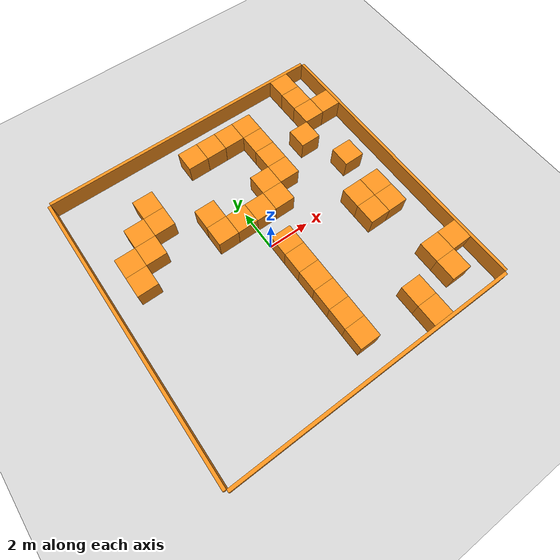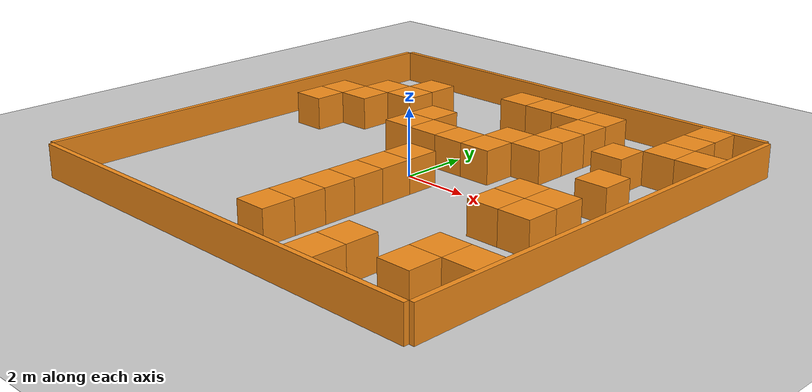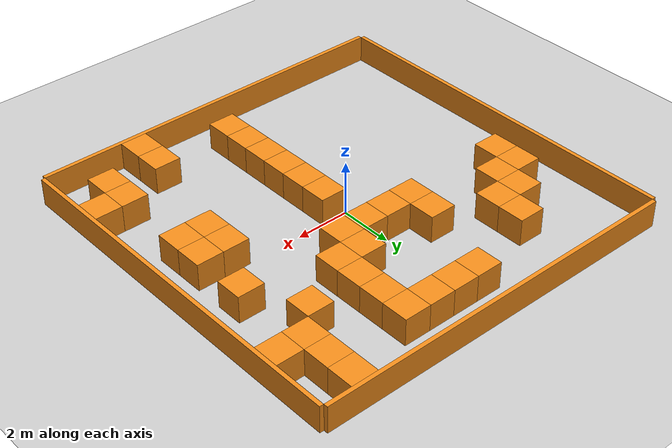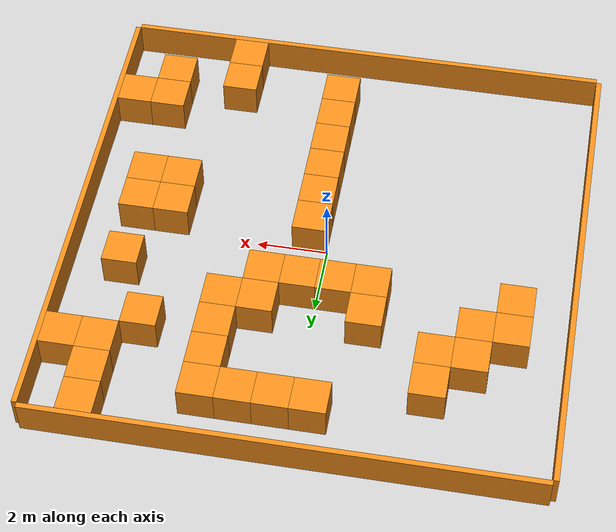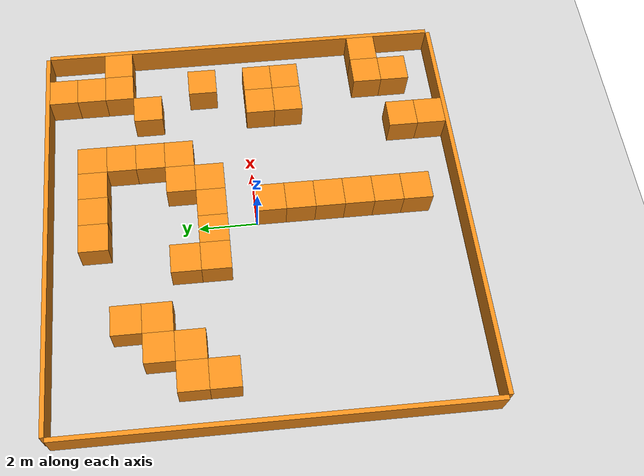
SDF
<sdf version='1.6'>
  <world name='default'>
    <scene>
      <shadows>0</shadows>
      <ambient>0.8 0.8 0.8 1</ambient>
      <background>1 1 1 1</background>
      <grid>1</grid>
      <origin_visual>1</origin_visual>
    </scene>
    <physics name='default_physics' default='0' type='ode'>
      <max_step_size>0.001</max_step_size>
      <real_time_factor>1</real_time_factor>
      <real_time_update_rate>500</real_time_update_rate>
    </physics>

     <model name='ground_plane'>
      <static>1</static>
      <link name='link'>
        <collision name='collision'>
          <geometry>
            <plane>
              <normal>0 0 1</normal>
              <size>50 50</size>
            </plane>
          </geometry>
          <surface>
            <friction>
              <ode>
                <mu>100</mu>
                <mu2>50</mu2>
              </ode>
              <torsional>
                <ode/>
              </torsional>
            </friction>
            <bounce/>
            <contact>
              <ode/>
            </contact>
          </surface>
          <max_contacts>10</max_contacts>
        </collision>
        <visual name='visual'>
          <cast_shadows>0</cast_shadows>
          <geometry>
            <plane>
              <normal>0 0 1</normal>
              <size>100 100</size>
            </plane>
          </geometry>
          <material>
            <script>
              <name>Gazebo/Grey</name>
              <uri>file://media/materials/scripts/gazebo.material</uri>
            </script>
          </material>
        </visual>
        <velocity_decay>
          <linear>0</linear>
          <angular>0</angular>
        </velocity_decay>
        <self_collide>0</self_collide>
        <kinematic>0</kinematic>
        <gravity>1</gravity>
        <enable_wind>0</enable_wind>
      </link>
    </model>

    <gui fullscreen='0'>
      <camera name='world_camera'>
        <pose frame=''>0.0 0.0 30.0 3.14159 1.57079 3.14159</pose>
        <view_controller>ortho</view_controller>
        <projection_type>orthographic</projection_type>
      </camera>
    </gui>

    <gravity>0 0 -9.8</gravity>
    <magnetic_field>6e-06 2.3e-05 -4.2e-05</magnetic_field>
    <atmosphere type='adiabatic'/>
    <audio>
      <device>default</device>
    </audio>
    <wind/>
    <spherical_coordinates>
      <surface_model>EARTH_WGS84</surface_model>
      <latitude_deg>0</latitude_deg>
      <longitude_deg>0</longitude_deg>
      <elevation>0</elevation>
      <heading_deg>0</heading_deg>
    </spherical_coordinates>

    <model name='unit_box'>
      <pose frame=''>5.5 6.5 0.5 0 -0 0</pose>
      <static>1</static>
      <link name='link'>
        <inertial>
          <mass>1</mass>
          <inertia>
            <ixx>0.166667</ixx>
            <ixy>0</ixy>
            <ixz>0</ixz>
            <iyy>0.166667</iyy>
            <iyz>0</iyz>
            <izz>0.166667</izz>
          </inertia>
        </inertial>
        <collision name='collision'>
          <geometry>
            <box>
              <size>0.999998 1 1</size>
            </box>
          </geometry>
          <max_contacts>10</max_contacts>
          <surface>
            <contact>
              <ode/>
            </contact>
            <bounce/>
            <friction>
              <torsional>
                <ode/>
              </torsional>
              <ode/>
            </friction>
          </surface>
        </collision>
        <visual name='visual'>
          <geometry>
            <box>
              <size>0.999998 1 1</size>
            </box>
          </geometry>
          <material>
            <script>
              <name>Gazebo/Orange</name>
              <uri>file://media/materials/scripts/gazebo.material</uri>
            </script>
          </material>
        </visual>
        <self_collide>0</self_collide>
        <enable_wind>0</enable_wind>
        <kinematic>0</kinematic>
      </link>
    </model>

    <model name='outer_barrier_1'>
      <pose frame=''>-7.075 0 0.5 0 -0 0</pose>
      <static>1</static>
      <link name='link'>
        <inertial>
          <mass>1</mass>
          <inertia>
            <ixx>0.166667</ixx>
            <ixy>0</ixy>
            <ixz>0</ixz>
            <iyy>0.166667</iyy>
            <iyz>0</iyz>
            <izz>0.166667</izz>
          </inertia>
        </inertial>
        <collision name='collision'>
          <geometry>
            <box>
              <size>0.15 14 1</size>
            </box>
          </geometry>
          <max_contacts>10</max_contacts>
          <surface>
            <contact>
              <ode/>
            </contact>
            <bounce/>
            <friction>
              <torsional>
                <ode/>
              </torsional>
              <ode/>
            </friction>
          </surface>
        </collision>
        <visual name='visual'>
          <geometry>
            <box>
              <size>0.15 14 1</size>
            </box>
          </geometry>
          <material>
            <script>
              <name>Gazebo/Orange</name>
              <uri>file://media/materials/scripts/gazebo.material</uri>
            </script>
          </material>
        </visual>
        <self_collide>0</self_collide>
        <enable_wind>0</enable_wind>
        <kinematic>0</kinematic>
      </link>
    </model>

    <model name='outer_barrier_2'>
      <pose frame=''>7.075 0 0.5 0 -0 0</pose>
      <static>1</static>
      <link name='link'>
        <inertial>
          <mass>1</mass>
          <inertia>
            <ixx>0.166667</ixx>
            <ixy>0</ixy>
            <ixz>0</ixz>
            <iyy>0.166667</iyy>
            <iyz>0</iyz>
            <izz>0.166667</izz>
          </inertia>
        </inertial>
        <collision name='collision'>
          <geometry>
            <box>
              <size>0.15 14 1</size>
            </box>
          </geometry>
          <max_contacts>10</max_contacts>
          <surface>
            <contact>
              <ode/>
            </contact>
            <bounce/>
            <friction>
              <torsional>
                <ode/>
              </torsional>
              <ode/>
            </friction>
          </surface>
        </collision>
        <visual name='visual'>
          <geometry>
            <box>
              <size>0.15 14 1</size>
            </box>
          </geometry>
          <material>
            <script>
              <name>Gazebo/Orange</name>
              <uri>file://media/materials/scripts/gazebo.material</uri>
            </script>
          </material>
        </visual>
        <self_collide>0</self_collide>
        <enable_wind>0</enable_wind>
        <kinematic>0</kinematic>
      </link>
    </model>

    <model name='outer_barrier_3'>
      <pose frame=''>0 7.075 0.5 0 -0 1.5708</pose>
      <static>1</static>
      <link name='link'>
        <inertial>
          <mass>1</mass>
          <inertia>
            <ixx>0.166667</ixx>
            <ixy>0</ixy>
            <ixz>0</ixz>
            <iyy>0.166667</iyy>
            <iyz>0</iyz>
            <izz>0.166667</izz>
          </inertia>
        </inertial>
        <collision name='collision'>
          <geometry>
            <box>
              <size>0.15 14 1</size>
            </box>
          </geometry>
          <max_contacts>10</max_contacts>
          <surface>
            <contact>
              <ode/>
            </contact>
            <bounce/>
            <friction>
              <torsional>
                <ode/>
              </torsional>
              <ode/>
            </friction>
          </surface>
        </collision>
        <visual name='visual'>
          <geometry>
            <box>
              <size>0.15 14 1</size>
            </box>
          </geometry>
          <material>
            <script>
              <name>Gazebo/Orange</name>
              <uri>file://media/materials/scripts/gazebo.material</uri>
            </script>
          </material>
        </visual>
        <self_collide>0</self_collide>
        <enable_wind>0</enable_wind>
        <kinematic>0</kinematic>
      </link>
    </model>

    <model name='outer_barrier_4'>
      <pose frame=''>0 -7.075 0.5 0 -0 1.5708</pose>
      <static>1</static>
      <link name='link'>
        <inertial>
          <mass>1</mass>
          <inertia>
            <ixx>0.166667</ixx>
            <ixy>0</ixy>
            <ixz>0</ixz>
            <iyy>0.166667</iyy>
            <iyz>0</iyz>
            <izz>0.166667</izz>
          </inertia>
        </inertial>
        <collision name='collision'>
          <geometry>
            <box>
              <size>0.15 14 1</size>
            </box>
          </geometry>
          <max_contacts>10</max_contacts>
          <surface>
            <contact>
              <ode/>
            </contact>
            <bounce/>
            <friction>
              <torsional>
                <ode/>
              </torsional>
              <ode/>
            </friction>
          </surface>
        </collision>
        <visual name='visual'>
          <geometry>
            <box>
              <size>0.15 14 1</size>
            </box>
          </geometry>
          <material>
            <script>
              <name>Gazebo/Orange</name>
              <uri>file://media/materials/scripts/gazebo.material</uri>
            </script>
          </material>
        </visual>
        <self_collide>0</self_collide>
        <enable_wind>0</enable_wind>
        <kinematic>0</kinematic>
      </link>
    </model>

    <model name='box_01'>
      <pose frame=''>5.5 5.5 0.5 0 -0 0</pose>
      <static>1</static>
      <link name='link'>
        <inertial>
          <mass>1</mass>
          <inertia>
            <ixx>0.166667</ixx>
            <ixy>0</ixy>
            <ixz>0</ixz>
            <iyy>0.166667</iyy>
            <iyz>0</iyz>
            <izz>0.166667</izz>
          </inertia>
        </inertial>
        <collision name='collision'>
          <geometry>
            <box>
              <size>0.999998 1 1</size>
            </box>
          </geometry>
          <max_contacts>10</max_contacts>
          <surface>
            <contact>
              <ode/>
            </contact>
            <bounce/>
            <friction>
              <torsional>
                <ode/>
              </torsional>
              <ode/>
            </friction>
          </surface>
        </collision>
        <visual name='visual'>
          <geometry>
            <box>
              <size>0.999998 1 1</size>
            </box>
          </geometry>
          <material>
            <script>
              <name>Gazebo/Orange</name>
              <uri>file://media/materials/scripts/gazebo.material</uri>
            </script>
          </material>
        </visual>
        <self_collide>0</self_collide>
        <enable_wind>0</enable_wind>
        <kinematic>0</kinematic>
      </link>
    </model>

    <model name='box_02'>
      <pose frame=''>4.5 3.5 0.5 0 -0 0</pose>
      <static>1</static>
      <link name='link'>
        <inertial>
          <mass>1</mass>
          <inertia>
            <ixx>0.166667</ixx>
            <ixy>0</ixy>
            <ixz>0</ixz>
            <iyy>0.166667</iyy>
            <iyz>0</iyz>
            <izz>0.166667</izz>
          </inertia>
        </inertial>
        <collision name='collision'>
          <geometry>
            <box>
              <size>0.999998 1 1</size>
            </box>
          </geometry>
          <max_contacts>10</max_contacts>
          <surface>
            <contact>
              <ode/>
            </contact>
            <bounce/>
            <friction>
              <torsional>
                <ode/>
              </torsional>
              <ode/>
            </friction>
          </surface>
        </collision>
        <visual name='visual'>
          <geometry>
            <box>
              <size>0.999998 1 1</size>
            </box>
          </geometry>
          <material>
            <script>
              <name>Gazebo/Orange</name>
              <uri>file://media/materials/scripts/gazebo.material</uri>
            </script>
          </material>
        </visual>
        <self_collide>0</self_collide>
        <enable_wind>0</enable_wind>
        <kinematic>0</kinematic>
      </link>
    </model>

    <model name='box_03'>
      <pose frame=''>0.5 -0.5 0.5 0 -0 0</pose>
      <static>1</static>
      <link name='link'>
        <inertial>
          <mass>1</mass>
          <inertia>
            <ixx>0.166667</ixx>
            <ixy>0</ixy>
            <ixz>0</ixz>
            <iyy>0.166667</iyy>
            <iyz>0</iyz>
            <izz>0.166667</izz>
          </inertia>
        </inertial>
        <collision name='collision'>
          <geometry>
            <box>
              <size>0.999998 1 1</size>
            </box>
          </geometry>
          <max_contacts>10</max_contacts>
          <surface>
            <contact>
              <ode/>
            </contact>
            <bounce/>
            <friction>
              <torsional>
                <ode/>
              </torsional>
              <ode/>
            </friction>
          </surface>
        </collision>
        <visual name='visual'>
          <geometry>
            <box>
              <size>0.999998 1 1</size>
            </box>
          </geometry>
          <material>
            <script>
              <name>Gazebo/Orange</name>
              <uri>file://media/materials/scripts/gazebo.material</uri>
            </script>
          </material>
        </visual>
        <self_collide>0</self_collide>
        <enable_wind>0</enable_wind>
        <kinematic>0</kinematic>
      </link>
    </model>

    <model name='box_04'>
      <pose frame=''>0.5 -1.5 0.5 0 -0 0</pose>
      <static>1</static>
      <link name='link'>
        <inertial>
          <mass>1</mass>
          <inertia>
            <ixx>0.166667</ixx>
            <ixy>0</ixy>
            <ixz>0</ixz>
            <iyy>0.166667</iyy>
            <iyz>0</iyz>
            <izz>0.166667</izz>
          </inertia>
        </inertial>
        <collision name='collision'>
          <geometry>
            <box>
              <size>0.999998 1 1</size>
            </box>
          </geometry>
          <max_contacts>10</max_contacts>
          <surface>
            <contact>
              <ode/>
            </contact>
            <bounce/>
            <friction>
              <torsional>
                <ode/>
              </torsional>
              <ode/>
            </friction>
          </surface>
        </collision>
        <visual name='visual'>
          <geometry>
            <box>
              <size>0.999998 1 1</size>
            </box>
          </geometry>
          <material>
            <script>
              <name>Gazebo/Orange</name>
              <uri>file://media/materials/scripts/gazebo.material</uri>
            </script>
          </material>
        </visual>
        <self_collide>0</self_collide>
        <enable_wind>0</enable_wind>
        <kinematic>0</kinematic>
      </link>
    </model>

    <model name='box_05'>
      <pose frame=''>0.5 -2.5 0.5 0 -0 0</pose>
      <static>1</static>
      <link name='link'>
        <inertial>
          <mass>1</mass>
          <inertia>
            <ixx>0.166667</ixx>
            <ixy>0</ixy>
            <ixz>0</ixz>
            <iyy>0.166667</iyy>
            <iyz>0</iyz>
            <izz>0.166667</izz>
          </inertia>
        </inertial>
        <collision name='collision'>
          <geometry>
            <box>
              <size>0.999998 1 1</size>
            </box>
          </geometry>
          <max_contacts>10</max_contacts>
          <surface>
            <contact>
              <ode/>
            </contact>
            <bounce/>
            <friction>
              <torsional>
                <ode/>
              </torsional>
              <ode/>
            </friction>
          </surface>
        </collision>
        <visual name='visual'>
          <geometry>
            <box>
              <size>0.999998 1 1</size>
            </box>
          </geometry>
          <material>
            <script>
              <name>Gazebo/Orange</name>
              <uri>file://media/materials/scripts/gazebo.material</uri>
            </script>
          </material>
        </visual>
        <self_collide>0</self_collide>
        <enable_wind>0</enable_wind>
        <kinematic>0</kinematic>
      </link>
    </model>

    <model name='box_06'>
      <pose frame=''>0.5 -5.5 0.5 0 -0 0</pose>
      <static>1</static>
      <link name='link'>
        <inertial>
          <mass>1</mass>
          <inertia>
            <ixx>0.166667</ixx>
            <ixy>0</ixy>
            <ixz>0</ixz>
            <iyy>0.166667</iyy>
            <iyz>0</iyz>
            <izz>0.166667</izz>
          </inertia>
        </inertial>
        <collision name='collision'>
          <geometry>
            <box>
              <size>0.999998 1 1</size>
            </box>
          </geometry>
          <max_contacts>10</max_contacts>
          <surface>
            <contact>
              <ode/>
            </contact>
            <bounce/>
            <friction>
              <torsional>
                <ode/>
              </torsional>
              <ode/>
            </friction>
          </surface>
        </collision>
        <visual name='visual'>
          <geometry>
            <box>
              <size>0.999998 1 1</size>
            </box>
          </geometry>
          <material>
            <script>
              <name>Gazebo/Orange</name>
              <uri>file://media/materials/scripts/gazebo.material</uri>
            </script>
          </material>
        </visual>
        <self_collide>0</self_collide>
        <enable_wind>0</enable_wind>
        <kinematic>0</kinematic>
      </link>
    </model>

    <model name='box_07'>
      <pose frame=''>0.5 -3.5 0.5 0 -0 0</pose>
      <static>1</static>
      <link name='link'>
        <inertial>
          <mass>1</mass>
          <inertia>
            <ixx>0.166667</ixx>
            <ixy>0</ixy>
            <ixz>0</ixz>
            <iyy>0.166667</iyy>
            <iyz>0</iyz>
            <izz>0.166667</izz>
          </inertia>
        </inertial>
        <collision name='collision'>
          <geometry>
            <box>
              <size>0.999998 1 1</size>
            </box>
          </geometry>
          <max_contacts>10</max_contacts>
          <surface>
            <contact>
              <ode/>
            </contact>
            <bounce/>
            <friction>
              <torsional>
                <ode/>
              </torsional>
              <ode/>
            </friction>
          </surface>
        </collision>
        <visual name='visual'>
          <geometry>
            <box>
              <size>0.999998 1 1</size>
            </box>
          </geometry>
          <material>
            <script>
              <name>Gazebo/Orange</name>
              <uri>file://media/materials/scripts/gazebo.material</uri>
            </script>
          </material>
        </visual>
        <self_collide>0</self_collide>
        <enable_wind>0</enable_wind>
        <kinematic>0</kinematic>
      </link>
    </model>

    <model name='box_08'>
      <pose frame=''>3.5 -5.5 0.5 0 -0 0</pose>
      <static>1</static>
      <link name='link'>
        <inertial>
          <mass>1</mass>
          <inertia>
            <ixx>0.166667</ixx>
            <ixy>0</ixy>
            <ixz>0</ixz>
            <iyy>0.166667</iyy>
            <iyz>0</iyz>
            <izz>0.166667</izz>
          </inertia>
        </inertial>
        <collision name='collision'>
          <geometry>
            <box>
              <size>0.999998 1 1</size>
            </box>
          </geometry>
          <max_contacts>10</max_contacts>
          <surface>
            <contact>
              <ode/>
            </contact>
            <bounce/>
            <friction>
              <torsional>
                <ode/>
              </torsional>
              <ode/>
            </friction>
          </surface>
        </collision>
        <visual name='visual'>
          <geometry>
            <box>
              <size>0.999998 1 1</size>
            </box>
          </geometry>
          <material>
            <script>
              <name>Gazebo/Orange</name>
              <uri>file://media/materials/scripts/gazebo.material</uri>
            </script>
          </material>
        </visual>
        <self_collide>0</self_collide>
        <enable_wind>0</enable_wind>
        <kinematic>0</kinematic>
      </link>
    </model>

    <model name='box_09'>
      <pose frame=''>3.5 -6.5 0.5 0 -0 0</pose>
      <static>1</static>
      <link name='link'>
        <inertial>
          <mass>1</mass>
          <inertia>
            <ixx>0.166667</ixx>
            <ixy>0</ixy>
            <ixz>0</ixz>
            <iyy>0.166667</iyy>
            <iyz>0</iyz>
            <izz>0.166667</izz>
          </inertia>
        </inertial>
        <collision name='collision'>
          <geometry>
            <box>
              <size>0.999998 1 1</size>
            </box>
          </geometry>
          <max_contacts>10</max_contacts>
          <surface>
            <contact>
              <ode/>
            </contact>
            <bounce/>
            <friction>
              <torsional>
                <ode/>
              </torsional>
              <ode/>
            </friction>
          </surface>
        </collision>
        <visual name='visual'>
          <geometry>
            <box>
              <size>0.999998 1 1</size>
            </box>
          </geometry>
          <material>
            <script>
              <name>Gazebo/Orange</name>
              <uri>file://media/materials/scripts/gazebo.material</uri>
            </script>
          </material>
        </visual>
        <self_collide>0</self_collide>
        <enable_wind>0</enable_wind>
        <kinematic>0</kinematic>
      </link>
    </model>

    <model name='box_10'>
      <pose frame=''>2.5 5.5 0.5 0 -0 0</pose>
      <static>1</static>
      <link name='link'>
        <inertial>
          <mass>1</mass>
          <inertia>
            <ixx>0.166667</ixx>
            <ixy>0</ixy>
            <ixz>0</ixz>
            <iyy>0.166667</iyy>
            <iyz>0</iyz>
            <izz>0.166667</izz>
          </inertia>
        </inertial>
        <collision name='collision'>
          <geometry>
            <box>
              <size>0.999998 1 1</size>
            </box>
          </geometry>
          <max_contacts>10</max_contacts>
          <surface>
            <contact>
              <ode/>
            </contact>
            <bounce/>
            <friction>
              <torsional>
                <ode/>
              </torsional>
              <ode/>
            </friction>
          </surface>
        </collision>
        <visual name='visual'>
          <geometry>
            <box>
              <size>0.999998 1 1</size>
            </box>
          </geometry>
          <material>
            <script>
              <name>Gazebo/Orange</name>
              <uri>file://media/materials/scripts/gazebo.material</uri>
            </script>
          </material>
        </visual>
        <self_collide>0</self_collide>
        <enable_wind>0</enable_wind>
        <kinematic>0</kinematic>
      </link>
    </model>

    <model name='box_11'>
      <pose frame=''>1.5 2.5 0.5 0 -0 0</pose>
      <static>1</static>
      <link name='link'>
        <inertial>
          <mass>1</mass>
          <inertia>
            <ixx>0.166667</ixx>
            <ixy>0</ixy>
            <ixz>0</ixz>
            <iyy>0.166667</iyy>
            <iyz>0</iyz>
            <izz>0.166667</izz>
          </inertia>
        </inertial>
        <collision name='collision'>
          <geometry>
            <box>
              <size>0.999998 1 1</size>
            </box>
          </geometry>
          <max_contacts>10</max_contacts>
          <surface>
            <contact>
              <ode/>
            </contact>
            <bounce/>
            <friction>
              <torsional>
                <ode/>
              </torsional>
              <ode/>
            </friction>
          </surface>
        </collision>
        <visual name='visual'>
          <geometry>
            <box>
              <size>0.999998 1 1</size>
            </box>
          </geometry>
          <material>
            <script>
              <name>Gazebo/Orange</name>
              <uri>file://media/materials/scripts/gazebo.material</uri>
            </script>
          </material>
        </visual>
        <self_collide>0</self_collide>
        <enable_wind>0</enable_wind>
        <kinematic>0</kinematic>
      </link>
    </model>

    <model name='box_12'>
      <pose frame=''>-0.5 5.5 0.5 0 -0 0</pose>
      <static>1</static>
      <link name='link'>
        <inertial>
          <mass>1</mass>
          <inertia>
            <ixx>0.166667</ixx>
            <ixy>0</ixy>
            <ixz>0</ixz>
            <iyy>0.166667</iyy>
            <iyz>0</iyz>
            <izz>0.166667</izz>
          </inertia>
        </inertial>
        <collision name='collision'>
          <geometry>
            <box>
              <size>0.999998 1 1</size>
            </box>
          </geometry>
          <max_contacts>10</max_contacts>
          <surface>
            <contact>
              <ode/>
            </contact>
            <bounce/>
            <friction>
              <torsional>
                <ode/>
              </torsional>
              <ode/>
            </friction>
          </surface>
        </collision>
        <visual name='visual'>
          <geometry>
            <box>
              <size>0.999998 1 1</size>
            </box>
          </geometry>
          <material>
            <script>
              <name>Gazebo/Orange</name>
              <uri>file://media/materials/scripts/gazebo.material</uri>
            </script>
          </material>
        </visual>
        <self_collide>0</self_collide>
        <enable_wind>0</enable_wind>
        <kinematic>0</kinematic>
      </link>
    </model>

    <model name='box_13'>
      <pose frame=''>2.5 2.5 0.5 0 -0 0</pose>
      <static>1</static>
      <link name='link'>
        <inertial>
          <mass>1</mass>
          <inertia>
            <ixx>0.166667</ixx>
            <ixy>0</ixy>
            <ixz>0</ixz>
            <iyy>0.166667</iyy>
            <iyz>0</iyz>
            <izz>0.166667</izz>
          </inertia>
        </inertial>
        <collision name='collision'>
          <geometry>
            <box>
              <size>0.999998 1 1</size>
            </box>
          </geometry>
          <max_contacts>10</max_contacts>
          <surface>
            <contact>
              <ode/>
            </contact>
            <bounce/>
            <friction>
              <torsional>
                <ode/>
              </torsional>
              <ode/>
            </friction>
          </surface>
        </collision>
        <visual name='visual'>
          <geometry>
            <box>
              <size>0.999998 1 1</size>
            </box>
          </geometry>
          <material>
            <script>
              <name>Gazebo/Orange</name>
              <uri>file://media/materials/scripts/gazebo.material</uri>
            </script>
          </material>
        </visual>
        <self_collide>0</self_collide>
        <enable_wind>0</enable_wind>
        <kinematic>0</kinematic>
      </link>
    </model>

    <model name='box_14'>
      <pose frame=''>4.5 -0.5 0.5 0 -0 0</pose>
      <static>1</static>
      <link name='link'>
        <inertial>
          <mass>1</mass>
          <inertia>
            <ixx>0.166667</ixx>
            <ixy>0</ixy>
            <ixz>0</ixz>
            <iyy>0.166667</iyy>
            <iyz>0</iyz>
            <izz>0.166667</izz>
          </inertia>
        </inertial>
        <collision name='collision'>
          <geometry>
            <box>
              <size>0.999998 1 1</size>
            </box>
          </geometry>
          <max_contacts>10</max_contacts>
          <surface>
            <contact>
              <ode/>
            </contact>
            <bounce/>
            <friction>
              <torsional>
                <ode/>
              </torsional>
              <ode/>
            </friction>
          </surface>
        </collision>
        <visual name='visual'>
          <geometry>
            <box>
              <size>0.999998 1 1</size>
            </box>
          </geometry>
          <material>
            <script>
              <name>Gazebo/Orange</name>
              <uri>file://media/materials/scripts/gazebo.material</uri>
            </script>
          </material>
        </visual>
        <self_collide>0</self_collide>
        <enable_wind>0</enable_wind>
        <kinematic>0</kinematic>
      </link>
    </model>

    <model name='box_15'>
      <pose frame=''>4.5 -1.5 0.5 0 -0 0</pose>
      <static>1</static>
      <link name='link'>
        <inertial>
          <mass>1</mass>
          <inertia>
            <ixx>0.166667</ixx>
            <ixy>0</ixy>
            <ixz>0</ixz>
            <iyy>0.166667</iyy>
            <iyz>0</iyz>
            <izz>0.166667</izz>
          </inertia>
        </inertial>
        <collision name='collision'>
          <geometry>
            <box>
              <size>0.999998 1 1</size>
            </box>
          </geometry>
          <max_contacts>10</max_contacts>
          <surface>
            <contact>
              <ode/>
            </contact>
            <bounce/>
            <friction>
              <torsional>
                <ode/>
              </torsional>
              <ode/>
            </friction>
          </surface>
        </collision>
        <visual name='visual'>
          <geometry>
            <box>
              <size>0.999998 1 1</size>
            </box>
          </geometry>
          <material>
            <script>
              <name>Gazebo/Orange</name>
              <uri>file://media/materials/scripts/gazebo.material</uri>
            </script>
          </material>
        </visual>
        <self_collide>0</self_collide>
        <enable_wind>0</enable_wind>
        <kinematic>0</kinematic>
      </link>
    </model>

    <model name='box_17'>
      <pose frame=''>1.5 1.5 0.5 0 -0 0</pose>
      <static>1</static>
      <link name='link'>
        <inertial>
          <mass>1</mass>
          <inertia>
            <ixx>0.166667</ixx>
            <ixy>0</ixy>
            <ixz>0</ixz>
            <iyy>0.166667</iyy>
            <iyz>0</iyz>
            <izz>0.166667</izz>
          </inertia>
        </inertial>
        <collision name='collision'>
          <geometry>
            <box>
              <size>0.999998 1 1</size>
            </box>
          </geometry>
          <max_contacts>10</max_contacts>
          <surface>
            <contact>
              <ode/>
            </contact>
            <bounce/>
            <friction>
              <torsional>
                <ode/>
              </torsional>
              <ode/>
            </friction>
          </surface>
        </collision>
        <visual name='visual'>
          <geometry>
            <box>
              <size>0.999998 1 1</size>
            </box>
          </geometry>
          <material>
            <script>
              <name>Gazebo/Orange</name>
              <uri>file://media/materials/scripts/gazebo.material</uri>
            </script>
          </material>
        </visual>
        <self_collide>0</self_collide>
        <enable_wind>0</enable_wind>
        <kinematic>0</kinematic>
      </link>
    </model>

    <model name='box_18'>
      <pose frame=''>0.5 1.5 0.5 0 -0 0</pose>
      <static>1</static>
      <link name='link'>
        <inertial>
          <mass>1</mass>
          <inertia>
            <ixx>0.166667</ixx>
            <ixy>0</ixy>
            <ixz>0</ixz>
            <iyy>0.166667</iyy>
            <iyz>0</iyz>
            <izz>0.166667</izz>
          </inertia>
        </inertial>
        <collision name='collision'>
          <geometry>
            <box>
              <size>0.999998 1 1</size>
            </box>
          </geometry>
          <max_contacts>10</max_contacts>
          <surface>
            <contact>
              <ode/>
            </contact>
            <bounce/>
            <friction>
              <torsional>
                <ode/>
              </torsional>
              <ode/>
            </friction>
          </surface>
        </collision>
        <visual name='visual'>
          <geometry>
            <box>
              <size>0.999998 1 1</size>
            </box>
          </geometry>
          <material>
            <script>
              <name>Gazebo/Orange</name>
              <uri>file://media/materials/scripts/gazebo.material</uri>
            </script>
          </material>
        </visual>
        <self_collide>0</self_collide>
        <enable_wind>0</enable_wind>
        <kinematic>0</kinematic>
      </link>
    </model>

    <model name='box_19'>
      <pose frame=''>5.5 -0.5 0.5 0 -0 0</pose>
      <static>1</static>
      <link name='link'>
        <inertial>
          <mass>1</mass>
          <inertia>
            <ixx>0.166667</ixx>
            <ixy>0</ixy>
            <ixz>0</ixz>
            <iyy>0.166667</iyy>
            <iyz>0</iyz>
            <izz>0.166667</izz>
          </inertia>
        </inertial>
        <collision name='collision'>
          <geometry>
            <box>
              <size>0.999998 1 1</size>
            </box>
          </geometry>
          <max_contacts>10</max_contacts>
          <surface>
            <contact>
              <ode/>
            </contact>
            <bounce/>
            <friction>
              <torsional>
                <ode/>
              </torsional>
              <ode/>
            </friction>
          </surface>
        </collision>
        <visual name='visual'>
          <geometry>
            <box>
              <size>0.999998 1 1</size>
            </box>
          </geometry>
          <material>
            <script>
              <name>Gazebo/Orange</name>
              <uri>file://media/materials/scripts/gazebo.material</uri>
            </script>
          </material>
        </visual>
        <self_collide>0</self_collide>
        <enable_wind>0</enable_wind>
        <kinematic>0</kinematic>
      </link>
    </model>

    <model name='box_20'>
      <pose frame=''>5.5 -1.5 0.5 0 -0 0</pose>
      <static>1</static>
      <link name='link'>
        <inertial>
          <mass>1</mass>
          <inertia>
            <ixx>0.166667</ixx>
            <ixy>0</ixy>
            <ixz>0</ixz>
            <iyy>0.166667</iyy>
            <iyz>0</iyz>
            <izz>0.166667</izz>
          </inertia>
        </inertial>
        <collision name='collision'>
          <geometry>
            <box>
              <size>0.999998 1 1</size>
            </box>
          </geometry>
          <max_contacts>10</max_contacts>
          <surface>
            <contact>
              <ode/>
            </contact>
            <bounce/>
            <friction>
              <torsional>
                <ode/>
              </torsional>
              <ode/>
            </friction>
          </surface>
        </collision>
        <visual name='visual'>
          <geometry>
            <box>
              <size>0.999998 1 1</size>
            </box>
          </geometry>
          <material>
            <script>
              <name>Gazebo/Orange</name>
              <uri>file://media/materials/scripts/gazebo.material</uri>
            </script>
          </material>
        </visual>
        <self_collide>0</self_collide>
        <enable_wind>0</enable_wind>
        <kinematic>0</kinematic>
      </link>
    </model>

    <model name='box_23'>
      <pose frame=''>0.5 5.5 0.5 0 -0 0</pose>
      <static>1</static>
      <link name='link'>
        <inertial>
          <mass>1</mass>
          <inertia>
            <ixx>0.166667</ixx>
            <ixy>0</ixy>
            <ixz>0</ixz>
            <iyy>0.166667</iyy>
            <iyz>0</iyz>
            <izz>0.166667</izz>
          </inertia>
        </inertial>
        <collision name='collision'>
          <geometry>
            <box>
              <size>0.999998 1 1</size>
            </box>
          </geometry>
          <max_contacts>10</max_contacts>
          <surface>
            <contact>
              <ode/>
            </contact>
            <bounce/>
            <friction>
              <torsional>
                <ode/>
              </torsional>
              <ode/>
            </friction>
          </surface>
        </collision>
        <visual name='visual'>
          <geometry>
            <box>
              <size>0.999998 1 1</size>
            </box>
          </geometry>
          <material>
            <script>
              <name>Gazebo/Orange</name>
              <uri>file://media/materials/scripts/gazebo.material</uri>
            </script>
          </material>
        </visual>
        <self_collide>0</self_collide>
        <enable_wind>0</enable_wind>
        <kinematic>0</kinematic>
      </link>
    </model>

    <model name='box_24'>
      <pose frame=''>1.5 5.5 0.5 0 -0 0</pose>
      <static>1</static>
      <link name='link'>
        <inertial>
          <mass>1</mass>
          <inertia>
            <ixx>0.166667</ixx>
            <ixy>0</ixy>
            <ixz>0</ixz>
            <iyy>0.166667</iyy>
            <iyz>0</iyz>
            <izz>0.166667</izz>
          </inertia>
        </inertial>
        <collision name='collision'>
          <geometry>
            <box>
              <size>0.999998 1 1</size>
            </box>
          </geometry>
          <max_contacts>10</max_contacts>
          <surface>
            <contact>
              <ode/>
            </contact>
            <bounce/>
            <friction>
              <torsional>
                <ode/>
              </torsional>
              <ode/>
            </friction>
          </surface>
        </collision>
        <visual name='visual'>
          <geometry>
            <box>
              <size>0.999998 1 1</size>
            </box>
          </geometry>
          <material>
            <script>
              <name>Gazebo/Orange</name>
              <uri>file://media/materials/scripts/gazebo.material</uri>
            </script>
          </material>
        </visual>
        <self_collide>0</self_collide>
        <enable_wind>0</enable_wind>
        <kinematic>0</kinematic>
      </link>
    </model>

    <model name='box_25'>
      <pose frame=''>2.5 4.5 0.5 0 -0 0</pose>
      <static>1</static>
      <link name='link'>
        <inertial>
          <mass>1</mass>
          <inertia>
            <ixx>0.166667</ixx>
            <ixy>0</ixy>
            <ixz>0</ixz>
            <iyy>0.166667</iyy>
            <iyz>0</iyz>
            <izz>0.166667</izz>
          </inertia>
        </inertial>
        <collision name='collision'>
          <geometry>
            <box>
              <size>0.999998 1 1</size>
            </box>
          </geometry>
          <max_contacts>10</max_contacts>
          <surface>
            <contact>
              <ode/>
            </contact>
            <bounce/>
            <friction>
              <torsional>
                <ode/>
              </torsional>
              <ode/>
            </friction>
          </surface>
        </collision>
        <visual name='visual'>
          <geometry>
            <box>
              <size>0.999998 1 1</size>
            </box>
          </geometry>
          <material>
            <script>
              <name>Gazebo/Orange</name>
              <uri>file://media/materials/scripts/gazebo.material</uri>
            </script>
          </material>
        </visual>
        <self_collide>0</self_collide>
        <enable_wind>0</enable_wind>
        <kinematic>0</kinematic>
      </link>
    </model>

    <model name='box_26'>
      <pose frame=''>2.5 3.5 0.5 0 -0 0</pose>
      <static>1</static>
      <link name='link'>
        <inertial>
          <mass>1</mass>
          <inertia>
            <ixx>0.166667</ixx>
            <ixy>0</ixy>
            <ixz>0</ixz>
            <iyy>0.166667</iyy>
            <iyz>0</iyz>
            <izz>0.166667</izz>
          </inertia>
        </inertial>
        <collision name='collision'>
          <geometry>
            <box>
              <size>0.999998 1 1</size>
            </box>
          </geometry>
          <max_contacts>10</max_contacts>
          <surface>
            <contact>
              <ode/>
            </contact>
            <bounce/>
            <friction>
              <torsional>
                <ode/>
              </torsional>
              <ode/>
            </friction>
          </surface>
        </collision>
        <visual name='visual'>
          <geometry>
            <box>
              <size>0.999998 1 1</size>
            </box>
          </geometry>
          <material>
            <script>
              <name>Gazebo/Orange</name>
              <uri>file://media/materials/scripts/gazebo.material</uri>
            </script>
          </material>
        </visual>
        <self_collide>0</self_collide>
        <enable_wind>0</enable_wind>
        <kinematic>0</kinematic>
      </link>
    </model>

    <model name='box_27'>
      <pose frame=''>5.5 4.5 0.5 0 -0 0</pose>
      <static>1</static>
      <link name='link'>
        <inertial>
          <mass>1</mass>
          <inertia>
            <ixx>0.166667</ixx>
            <ixy>0</ixy>
            <ixz>0</ixz>
            <iyy>0.166667</iyy>
            <iyz>0</iyz>
            <izz>0.166667</izz>
          </inertia>
        </inertial>
        <collision name='collision'>
          <geometry>
            <box>
              <size>0.999998 1 1</size>
            </box>
          </geometry>
          <max_contacts>10</max_contacts>
          <surface>
            <contact>
              <ode/>
            </contact>
            <bounce/>
            <friction>
              <torsional>
                <ode/>
              </torsional>
              <ode/>
            </friction>
          </surface>
        </collision>
        <visual name='visual'>
          <geometry>
            <box>
              <size>0.999998 1 1</size>
            </box>
          </geometry>
          <material>
            <script>
              <name>Gazebo/Orange</name>
              <uri>file://media/materials/scripts/gazebo.material</uri>
            </script>
          </material>
        </visual>
        <self_collide>0</self_collide>
        <enable_wind>0</enable_wind>
        <kinematic>0</kinematic>
      </link>
    </model>

    <model name='box_28'>
      <pose frame=''>6.5 4.5 0.5 0 -0 0</pose>
      <static>1</static>
      <link name='link'>
        <inertial>
          <mass>1</mass>
          <inertia>
            <ixx>0.166667</ixx>
            <ixy>0</ixy>
            <ixz>0</ixz>
            <iyy>0.166667</iyy>
            <iyz>0</iyz>
            <izz>0.166667</izz>
          </inertia>
        </inertial>
        <collision name='collision'>
          <geometry>
            <box>
              <size>0.999998 1 1</size>
            </box>
          </geometry>
          <max_contacts>10</max_contacts>
          <surface>
            <contact>
              <ode/>
            </contact>
            <bounce/>
            <friction>
              <torsional>
                <ode/>
              </torsional>
              <ode/>
            </friction>
          </surface>
        </collision>
        <visual name='visual'>
          <geometry>
            <box>
              <size>0.999998 1 1</size>
            </box>
          </geometry>
          <material>
            <script>
              <name>Gazebo/Orange</name>
              <uri>file://media/materials/scripts/gazebo.material</uri>
            </script>
          </material>
        </visual>
        <self_collide>0</self_collide>
        <enable_wind>0</enable_wind>
        <kinematic>0</kinematic>
      </link>
    </model>

    <model name='box_29'>
      <pose frame=''>0.5 -4.5 0.5 0 -0 0</pose>
      <static>1</static>
      <link name='link'>
        <inertial>
          <mass>1</mass>
          <inertia>
            <ixx>0.166667</ixx>
            <ixy>0</ixy>
            <ixz>0</ixz>
            <iyy>0.166667</iyy>
            <iyz>0</iyz>
            <izz>0.166667</izz>
          </inertia>
        </inertial>
        <collision name='collision'>
          <geometry>
            <box>
              <size>0.999998 1 1</size>
            </box>
          </geometry>
          <max_contacts>10</max_contacts>
          <surface>
            <contact>
              <ode/>
            </contact>
            <bounce/>
            <friction>
              <torsional>
                <ode/>
              </torsional>
              <ode/>
            </friction>
          </surface>
        </collision>
        <visual name='visual'>
          <geometry>
            <box>
              <size>0.999998 1 1</size>
            </box>
          </geometry>
          <material>
            <script>
              <name>Gazebo/Orange</name>
              <uri>file://media/materials/scripts/gazebo.material</uri>
            </script>
          </material>
        </visual>
        <self_collide>0</self_collide>
        <enable_wind>0</enable_wind>
        <kinematic>0</kinematic>
      </link>
    </model>

    <model name='box_30'>
      <pose frame=''>-5.5 1.5 0.5 0 -0 0</pose>
      <static>1</static>
      <link name='link'>
        <inertial>
          <mass>1</mass>
          <inertia>
            <ixx>0.166667</ixx>
            <ixy>0</ixy>
            <ixz>0</ixz>
            <iyy>0.166667</iyy>
            <iyz>0</iyz>
            <izz>0.166667</izz>
          </inertia>
        </inertial>
        <collision name='collision'>
          <geometry>
            <box>
              <size>0.999998 1 1</size>
            </box>
          </geometry>
          <max_contacts>10</max_contacts>
          <surface>
            <contact>
              <ode/>
            </contact>
            <bounce/>
            <friction>
              <torsional>
                <ode/>
              </torsional>
              <ode/>
            </friction>
          </surface>
        </collision>
        <visual name='visual'>
          <geometry>
            <box>
              <size>0.999998 1 1</size>
            </box>
          </geometry>
          <material>
            <script>
              <name>Gazebo/Orange</name>
              <uri>file://media/materials/scripts/gazebo.material</uri>
            </script>
          </material>
        </visual>
        <self_collide>0</self_collide>
        <enable_wind>0</enable_wind>
        <kinematic>0</kinematic>
      </link>
    </model>

    <model name='box_31'>
      <pose frame=''>-5.5 2.5 0.5 0 -0 0</pose>
      <static>1</static>
      <link name='link'>
        <inertial>
          <mass>1</mass>
          <inertia>
            <ixx>0.166667</ixx>
            <ixy>0</ixy>
            <ixz>0</ixz>
            <iyy>0.166667</iyy>
            <iyz>0</iyz>
            <izz>0.166667</izz>
          </inertia>
        </inertial>
        <collision name='collision'>
          <geometry>
            <box>
              <size>0.999998 1 1</size>
            </box>
          </geometry>
          <max_contacts>10</max_contacts>
          <surface>
            <contact>
              <ode/>
            </contact>
            <bounce/>
            <friction>
              <torsional>
                <ode/>
              </torsional>
              <ode/>
            </friction>
          </surface>
        </collision>
        <visual name='visual'>
          <geometry>
            <box>
              <size>0.999998 1 1</size>
            </box>
          </geometry>
          <material>
            <script>
              <name>Gazebo/Orange</name>
              <uri>file://media/materials/scripts/gazebo.material</uri>
            </script>
          </material>
        </visual>
        <self_collide>0</self_collide>
        <enable_wind>0</enable_wind>
        <kinematic>0</kinematic>
      </link>
    </model>

    <model name='box_32'>
      <pose frame=''>-4.5 2.5 0.5 0 -0 0</pose>
      <static>1</static>
      <link name='link'>
        <inertial>
          <mass>1</mass>
          <inertia>
            <ixx>0.166667</ixx>
            <ixy>0</ixy>
            <ixz>0</ixz>
            <iyy>0.166667</iyy>
            <iyz>0</iyz>
            <izz>0.166667</izz>
          </inertia>
        </inertial>
        <collision name='collision'>
          <geometry>
            <box>
              <size>0.999998 1 1</size>
            </box>
          </geometry>
          <max_contacts>10</max_contacts>
          <surface>
            <contact>
              <ode/>
            </contact>
            <bounce/>
            <friction>
              <torsional>
                <ode/>
              </torsional>
              <ode/>
            </friction>
          </surface>
        </collision>
        <visual name='visual'>
          <geometry>
            <box>
              <size>0.999998 1 1</size>
            </box>
          </geometry>
          <material>
            <script>
              <name>Gazebo/Orange</name>
              <uri>file://media/materials/scripts/gazebo.material</uri>
            </script>
          </material>
        </visual>
        <self_collide>0</self_collide>
        <enable_wind>0</enable_wind>
        <kinematic>0</kinematic>
      </link>
    </model>

    <model name='box_33'>
      <pose frame=''>-4.5 3.5 0.5 0 -0 0</pose>
      <static>1</static>
      <link name='link'>
        <inertial>
          <mass>1</mass>
          <inertia>
            <ixx>0.166667</ixx>
            <ixy>0</ixy>
            <ixz>0</ixz>
            <iyy>0.166667</iyy>
            <iyz>0</iyz>
            <izz>0.166667</izz>
          </inertia>
        </inertial>
        <collision name='collision'>
          <geometry>
            <box>
              <size>0.999998 1 1</size>
            </box>
          </geometry>
          <max_contacts>10</max_contacts>
          <surface>
            <contact>
              <ode/>
            </contact>
            <bounce/>
            <friction>
              <torsional>
                <ode/>
              </torsional>
              <ode/>
            </friction>
          </surface>
        </collision>
        <visual name='visual'>
          <geometry>
            <box>
              <size>0.999998 1 1</size>
            </box>
          </geometry>
          <material>
            <script>
              <name>Gazebo/Orange</name>
              <uri>file://media/materials/scripts/gazebo.material</uri>
            </script>
          </material>
        </visual>
        <self_collide>0</self_collide>
        <enable_wind>0</enable_wind>
        <kinematic>0</kinematic>
      </link>
    </model>

    <model name='box_34'>
      <pose frame=''>-3.5 3.5 0.5 0 -0 0</pose>
      <static>1</static>
      <link name='link'>
        <inertial>
          <mass>1</mass>
          <inertia>
            <ixx>0.166667</ixx>
            <ixy>0</ixy>
            <ixz>0</ixz>
            <iyy>0.166667</iyy>
            <iyz>0</iyz>
            <izz>0.166667</izz>
          </inertia>
        </inertial>
        <collision name='collision'>
          <geometry>
            <box>
              <size>0.999998 1 1</size>
            </box>
          </geometry>
          <max_contacts>10</max_contacts>
          <surface>
            <contact>
              <ode/>
            </contact>
            <bounce/>
            <friction>
              <torsional>
                <ode/>
              </torsional>
              <ode/>
            </friction>
          </surface>
        </collision>
        <visual name='visual'>
          <geometry>
            <box>
              <size>0.999998 1 1</size>
            </box>
          </geometry>
          <material>
            <script>
              <name>Gazebo/Orange</name>
              <uri>file://media/materials/scripts/gazebo.material</uri>
            </script>
          </material>
        </visual>
        <self_collide>0</self_collide>
        <enable_wind>0</enable_wind>
        <kinematic>0</kinematic>
      </link>
    </model>

    <model name='box_35'>
      <pose frame=''>-3.5 4.5 0.5 0 -0 0</pose>
      <static>1</static>
      <link name='link'>
        <inertial>
          <mass>1</mass>
          <inertia>
            <ixx>0.166667</ixx>
            <ixy>0</ixy>
            <ixz>0</ixz>
            <iyy>0.166667</iyy>
            <iyz>0</iyz>
            <izz>0.166667</izz>
          </inertia>
        </inertial>
        <collision name='collision'>
          <geometry>
            <box>
              <size>0.999998 1 1</size>
            </box>
          </geometry>
          <max_contacts>10</max_contacts>
          <surface>
            <contact>
              <ode/>
            </contact>
            <bounce/>
            <friction>
              <torsional>
                <ode/>
              </torsional>
              <ode/>
            </friction>
          </surface>
        </collision>
        <visual name='visual'>
          <geometry>
            <box>
              <size>0.999998 1 1</size>
            </box>
          </geometry>
          <material>
            <script>
              <name>Gazebo/Orange</name>
              <uri>file://media/materials/scripts/gazebo.material</uri>
            </script>
          </material>
        </visual>
        <self_collide>0</self_collide>
        <enable_wind>0</enable_wind>
        <kinematic>0</kinematic>
      </link>
    </model>

    <model name='box_36'>
      <pose frame=''>-0.5 1.5 0.5 0 -0 0</pose>
      <static>1</static>
      <link name='link'>
        <inertial>
          <mass>1</mass>
          <inertia>
            <ixx>0.166667</ixx>
            <ixy>0</ixy>
            <ixz>0</ixz>
            <iyy>0.166667</iyy>
            <iyz>0</iyz>
            <izz>0.166667</izz>
          </inertia>
        </inertial>
        <collision name='collision'>
          <geometry>
            <box>
              <size>0.999998 1 1</size>
            </box>
          </geometry>
          <max_contacts>10</max_contacts>
          <surface>
            <contact>
              <ode/>
            </contact>
            <bounce/>
            <friction>
              <torsional>
                <ode/>
              </torsional>
              <ode/>
            </friction>
          </surface>
        </collision>
        <visual name='visual'>
          <geometry>
            <box>
              <size>0.999998 1 1</size>
            </box>
          </geometry>
          <material>
            <script>
              <name>Gazebo/Orange</name>
              <uri>file://media/materials/scripts/gazebo.material</uri>
            </script>
          </material>
        </visual>
        <self_collide>0</self_collide>
        <enable_wind>0</enable_wind>
        <kinematic>0</kinematic>
      </link>
    </model>

    <model name='box_37'>
      <pose frame=''>-1.5 1.5 0.5 0 -0 0</pose>
      <static>1</static>
      <link name='link'>
        <inertial>
          <mass>1</mass>
          <inertia>
            <ixx>0.166667</ixx>
            <ixy>0</ixy>
            <ixz>0</ixz>
            <iyy>0.166667</iyy>
            <iyz>0</iyz>
            <izz>0.166667</izz>
          </inertia>
        </inertial>
        <collision name='collision'>
          <geometry>
            <box>
              <size>0.999998 1 1</size>
            </box>
          </geometry>
          <max_contacts>10</max_contacts>
          <surface>
            <contact>
              <ode/>
            </contact>
            <bounce/>
            <friction>
              <torsional>
                <ode/>
              </torsional>
              <ode/>
            </friction>
          </surface>
        </collision>
        <visual name='visual'>
          <geometry>
            <box>
              <size>0.999998 1 1</size>
            </box>
          </geometry>
          <material>
            <script>
              <name>Gazebo/Orange</name>
              <uri>file://media/materials/scripts/gazebo.material</uri>
            </script>
          </material>
        </visual>
        <self_collide>0</self_collide>
        <enable_wind>0</enable_wind>
        <kinematic>0</kinematic>
      </link>
    </model>

    <model name='box_38'>
    <pose frame=''>-1.5 2.5 0.5 0 -0 0</pose>
      <static>1</static>
      <link name='link'>
        <inertial>
          <mass>1</mass>
          <inertia>
            <ixx>0.166667</ixx>
            <ixy>0</ixy>
            <ixz>0</ixz>
            <iyy>0.166667</iyy>
            <iyz>0</iyz>
            <izz>0.166667</izz>
          </inertia>
        </inertial>
        <collision name='collision'>
          <geometry>
            <box>
              <size>0.999998 1 1</size>
            </box>
          </geometry>
          <max_contacts>10</max_contacts>
          <surface>
            <contact>
              <ode/>
            </contact>
            <bounce/>
            <friction>
              <torsional>
                <ode/>
              </torsional>
              <ode/>
            </friction>
          </surface>
        </collision>
        <visual name='visual'>
          <geometry>
            <box>
              <size>0.999998 1 1</size>
            </box>
          </geometry>
          <material>
            <script>
              <name>Gazebo/Orange</name>
              <uri>file://media/materials/scripts/gazebo.material</uri>
            </script>
          </material>
        </visual>
        <self_collide>0</self_collide>
        <enable_wind>0</enable_wind>
        <kinematic>0</kinematic>
      </link>
    </model>

    <model name='box_39'>
      <pose frame=''>5.5 -4.5 0.5 0 -0 0</pose>
      <static>1</static>
      <link name='link'>
        <inertial>
          <mass>1</mass>
          <inertia>
            <ixx>0.166667</ixx>
            <ixy>0</ixy>
            <ixz>0</ixz>
            <iyy>0.166667</iyy>
            <iyz>0</iyz>
            <izz>0.166667</izz>
          </inertia>
        </inertial>
        <collision name='collision'>
          <geometry>
            <box>
              <size>0.999998 1 1</size>
            </box>
          </geometry>
          <max_contacts>10</max_contacts>
          <surface>
            <contact>
              <ode/>
            </contact>
            <bounce/>
            <friction>
              <torsional>
                <ode/>
              </torsional>
              <ode/>
            </friction>
          </surface>
        </collision>
        <visual name='visual'>
          <geometry>
            <box>
              <size>0.999998 1 1</size>
            </box>
          </geometry>
          <material>
            <script>
              <name>Gazebo/Orange</name>
              <uri>file://media/materials/scripts/gazebo.material</uri>
            </script>
          </material>
        </visual>
        <self_collide>0</self_collide>
        <enable_wind>0</enable_wind>
        <kinematic>0</kinematic>
      </link>
    </model>

    <model name='box_40'>
      <pose frame=''>6.5 -4.5 0.5 0 -0 0</pose>
      <static>1</static>
      <link name='link'>
        <inertial>
          <mass>1</mass>
          <inertia>
            <ixx>0.166667</ixx>
            <ixy>0</ixy>
            <ixz>0</ixz>
            <iyy>0.166667</iyy>
            <iyz>0</iyz>
            <izz>0.166667</izz>
          </inertia>
        </inertial>
        <collision name='collision'>
          <geometry>
            <box>
              <size>0.999998 1 1</size>
            </box>
          </geometry>
          <max_contacts>10</max_contacts>
          <surface>
            <contact>
              <ode/>
            </contact>
            <bounce/>
            <friction>
              <torsional>
                <ode/>
              </torsional>
              <ode/>
            </friction>
          </surface>
        </collision>
        <visual name='visual'>
          <geometry>
            <box>
              <size>0.999998 1 1</size>
            </box>
          </geometry>
          <material>
            <script>
              <name>Gazebo/Orange</name>
              <uri>file://media/materials/scripts/gazebo.material</uri>
            </script>
          </material>
        </visual>
        <self_collide>0</self_collide>
        <enable_wind>0</enable_wind>
        <kinematic>0</kinematic>
      </link>
    </model>

    <model name='box_41'>
      <pose frame=''>5.5 -5.5 0.5 0 -0 0</pose>
      <static>1</static>
      <link name='link'>
        <inertial>
          <mass>1</mass>
          <inertia>
            <ixx>0.166667</ixx>
            <ixy>0</ixy>
            <ixz>0</ixz>
            <iyy>0.166667</iyy>
            <iyz>0</iyz>
            <izz>0.166667</izz>
          </inertia>
        </inertial>
        <collision name='collision'>
          <geometry>
            <box>
              <size>0.999998 1 1</size>
            </box>
          </geometry>
          <max_contacts>10</max_contacts>
          <surface>
            <contact>
              <ode/>
            </contact>
            <bounce/>
            <friction>
              <torsional>
                <ode/>
              </torsional>
              <ode/>
            </friction>
          </surface>
        </collision>
        <visual name='visual'>
          <geometry>
            <box>
              <size>0.999998 1 1</size>
            </box>
          </geometry>
          <material>
            <script>
              <name>Gazebo/Orange</name>
              <uri>file://media/materials/scripts/gazebo.material</uri>
            </script>
          </material>
        </visual>
        <self_collide>0</self_collide>
        <enable_wind>0</enable_wind>
        <kinematic>0</kinematic>
      </link>
    </model>

    <model name='box_42'>
      <pose frame=''>5.5 1.5 0.5 0 -0 0</pose>
      <static>1</static>
      <link name='link'>
        <inertial>
          <mass>1</mass>
          <inertia>
            <ixx>0.166667</ixx>
            <ixy>0</ixy>
            <ixz>0</ixz>
            <iyy>0.166667</iyy>
            <iyz>0</iyz>
            <izz>0.166667</izz>
          </inertia>
        </inertial>
        <collision name='collision'>
          <geometry>
            <box>
              <size>0.999998 1 1</size>
            </box>
          </geometry>
          <max_contacts>10</max_contacts>
          <surface>
            <contact>
              <ode/>
            </contact>
            <bounce/>
            <friction>
              <torsional>
                <ode/>
              </torsional>
              <ode/>
            </friction>
          </surface>
        </collision>
        <visual name='visual'>
          <geometry>
            <box>
              <size>0.999998 1 1</size>
            </box>
          </geometry>
          <material>
            <script>
              <name>Gazebo/Orange</name>
              <uri>file://media/materials/scripts/gazebo.material</uri>
            </script>
          </material>
        </visual>
        <self_collide>0</self_collide>
        <enable_wind>0</enable_wind>
        <kinematic>0</kinematic>
      </link>
    </model>
  </world>
</sdf>
